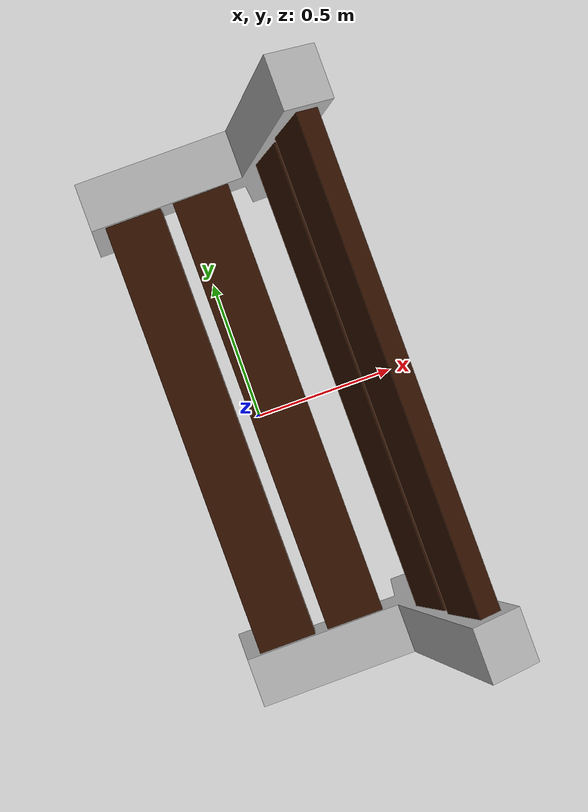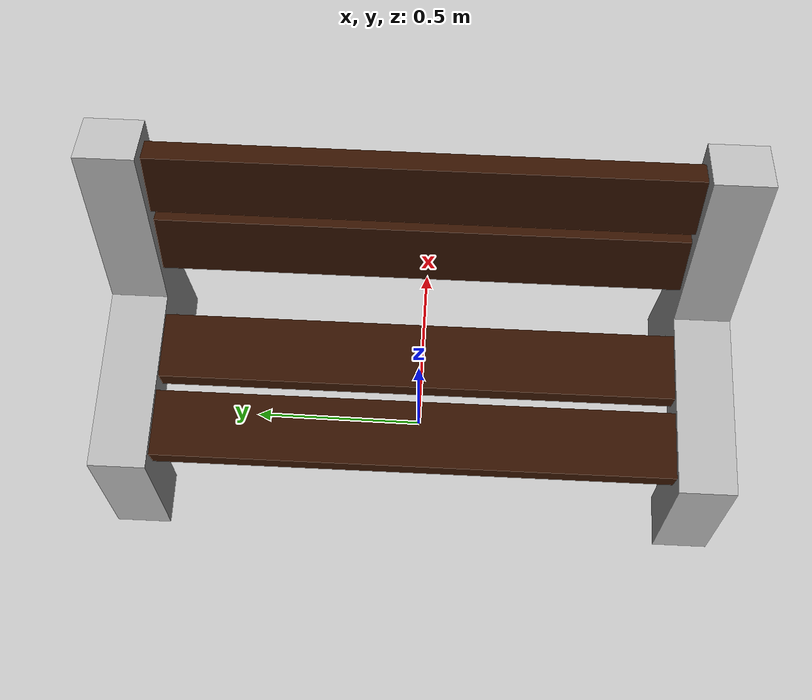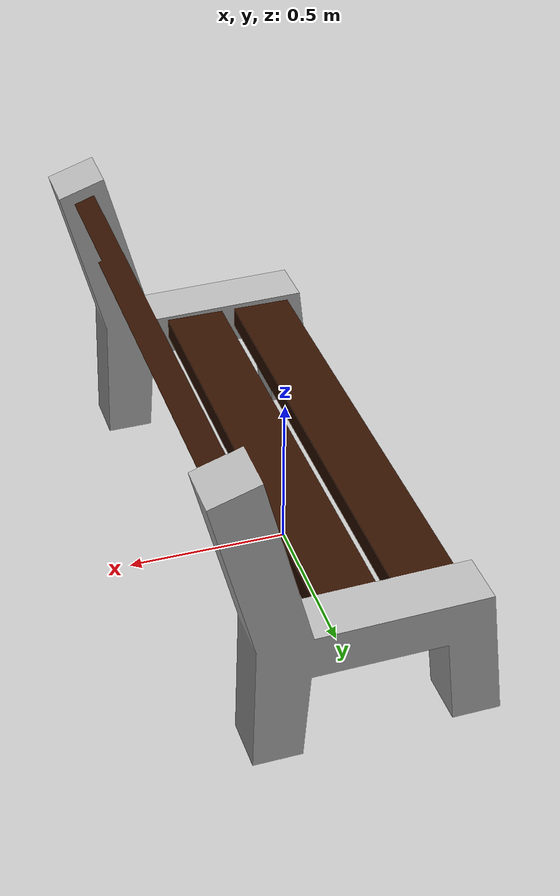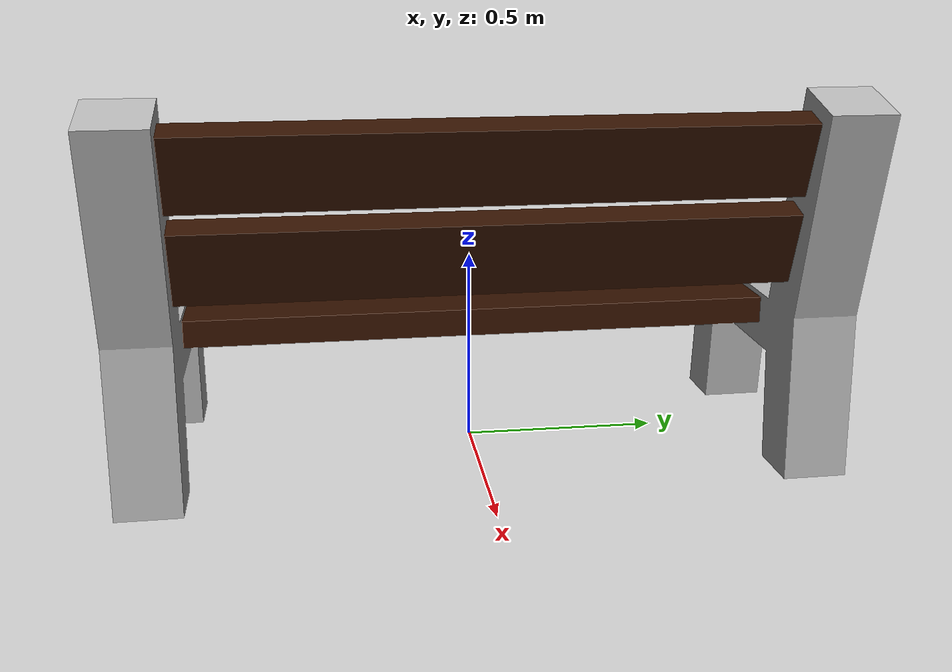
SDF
<?xml version='1.0'?>
<sdf version="1.4">
  <model name="park_bench">
    <static>true</static>
    <link name="link">
      <collision name="collision">
        <geometry>
          <mesh>
            <uri>model://park_bench/meshes/collision.dae</uri>
          </mesh>
        </geometry>
      </collision>
      <visual name="visual">
        <geometry>
          <mesh>
            <uri>model://park_bench/meshes/park_bench.dae</uri>
          </mesh>
        </geometry>
      </visual>
    </link>
  </model>
</sdf>
